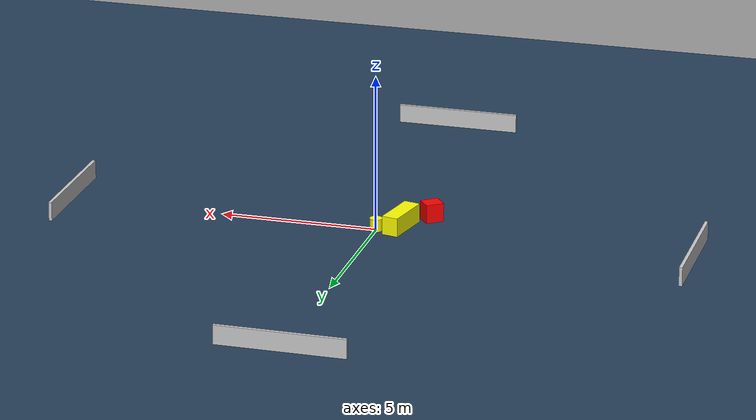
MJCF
<?xml version="1.0" ?>
<mujoco model="generated_environment">
  <option timestep="0.01" integrator="RK4" cone="elliptic"/>
  <default>
    <geom density="1"/>
  </default>
  <asset>
    <texture builtin="gradient" height="3072" name="skybox" rgb1="0.3 0.5 0.7" rgb2="0 0 0" type="skybox" width="512"/>
    <texture builtin="checker" height="300" name="groundplane" rgb1="0.2 0.3 0.4" rgb2="0.1 0.2 0.3" type="2d" width="300"/>
    <material name="groundplane" reflectance="0.2" texrepeat="5 5" texture="groundplane"/>
  </asset>
  <worldbody>
    <light dir="0 0 -1" directional="true" pos="0 0 1.5"/>
    <geom condim="3" friction="0.5 0.005 0.001" material="groundplane" name="floor" pos="0 0 0" size="0 0 0.05" type="plane"/>
    <body name="walls">
      <geom name="wall_1" condim="4" pos="-10.0 0.0 0.3" rgba="0.800000011920929 0.800000011920929 0.800000011920929 1.0" size="0.05 2.0 0.3" type="box"/>
      <geom name="wall_2" condim="4" pos="10.0 0.0 0.3" rgba="0.800000011920929 0.800000011920929 0.800000011920929 1.0" size="0.05 2.0 0.3" type="box"/>
      <geom name="wall_3" condim="4" pos="0.0 -10.0 0.3" rgba="0.800000011920929 0.800000011920929 0.800000011920929 1.0" size="2.0 0.05 0.3" type="box"/>
      <geom name="wall_4" condim="4" pos="0.0 10.0 0.3" rgba="0.800000011920929 0.800000011920929 0.800000011920929 1.0" size="2.0 0.05 0.3" type="box"/>
    </body>
    <body name="robot">
      <joint name="joint_x" type="slide" pos="0 0 0" axis="1 0 0"/>
      <joint name="joint_y" type="slide" pos="0 0 0" axis="0 1 0"/>
      <geom name="robot" type="cylinder" pos="0.0 0.0 0.2" size="0.2 0.2 0.0" mass="5.0" friction="1.0 0.005 0.0001" condim="4" rgba="1.0 1.0 0.0 1.0"/>
    </body>
    <body name="obstacle_1_movable">
      <geom name="obstacle_1_movable" condim="4" pos="-0.6953956681273966 -0.38438040754760944 0.3" euler="0 0 167.85378307188736" friction="0.0 0.005 0.001" rgba="1.0 1.0 0.0 1.0" size="0.2622938508102074 0.7570330250513364 0.3" type="box" mass="0.1"/>
      <joint type="free"/>
    </body>
    <body name="obstacle_2_static">
      <geom name="obstacle_2_static" condim="4" pos="-1.4375079521198706 -1.3261539398303417 0.3" euler="0 0 37.53292625234406" friction="0.0 0.005 0.001" rgba="1.0 0.0 0.0 1.0" size="0.2911757819600359 0.25895686481334634 0.3" type="box"/>
    </body>
  </worldbody>
  <actuator>
    <motor name="actuator_x" joint="joint_x" gear="1" ctrlrange="-1 1"/>
    <motor name="actuator_y" joint="joint_y" gear="1" ctrlrange="-1 1"/>
  </actuator>
</mujoco>
